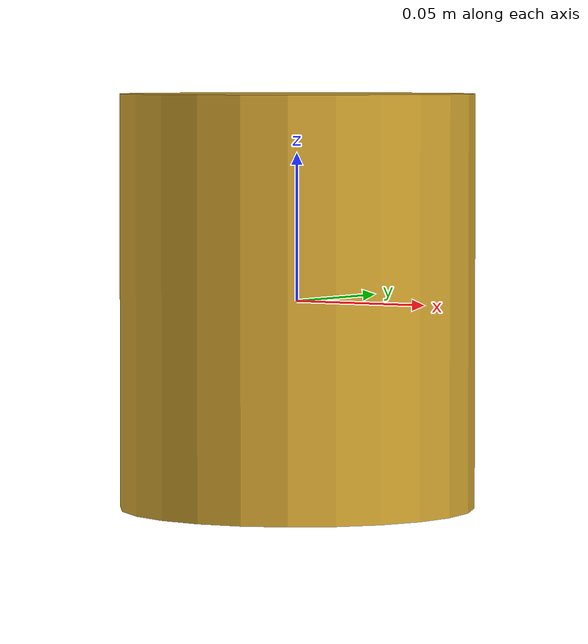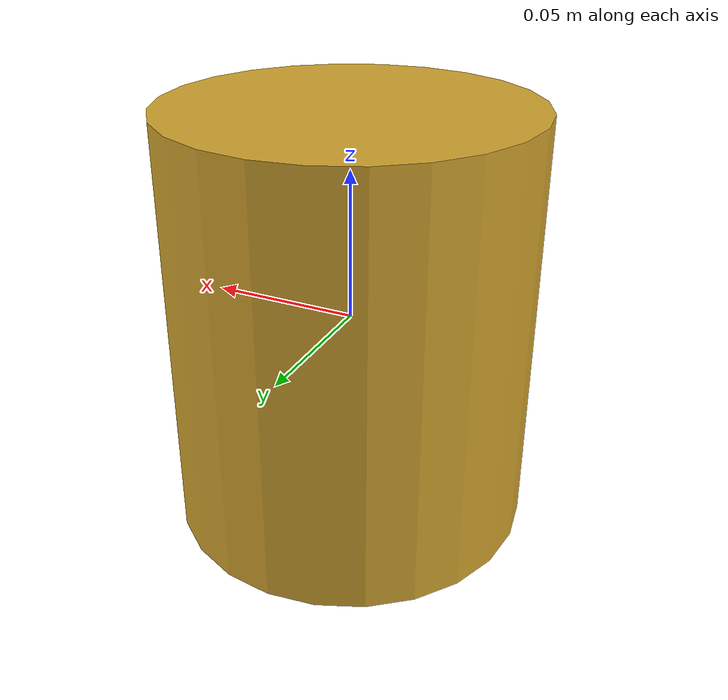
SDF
<?xml version="1.0" ?>
<sdf version="1.9">
  <model name="artifact">
    <static>false</static>
    <link name="link">
      <inertial>
        <mass>0.3</mass>
        <inertia>
          <ixx>0.0006</ixx>
          <ixy>0</ixy>
          <ixz>0</ixz>
          <iyy>0.0006</iyy>
          <iyz>0</iyz>
          <izz>0.0006</izz>
        </inertia>
      </inertial>
      <collision name="collision">
        <geometry>
          <cylinder>
            <radius>0.06</radius>
            <length>0.14</length>
          </cylinder>
        </geometry>
      </collision>
      <visual name="visual">
        <geometry>
          <cylinder>
            <radius>0.06</radius>
            <length>0.14</length>
          </cylinder>
        </geometry>
        <material>
          <ambient>0.65 0.50 0.14 1</ambient>
          <diffuse>0.82 0.64 0.18 1</diffuse>
          <specular>0.95 0.80 0.30 1</specular>
          <emissive>0.08 0.06 0.01 1</emissive>
        </material>
      </visual>
    </link>
  </model>
</sdf>
